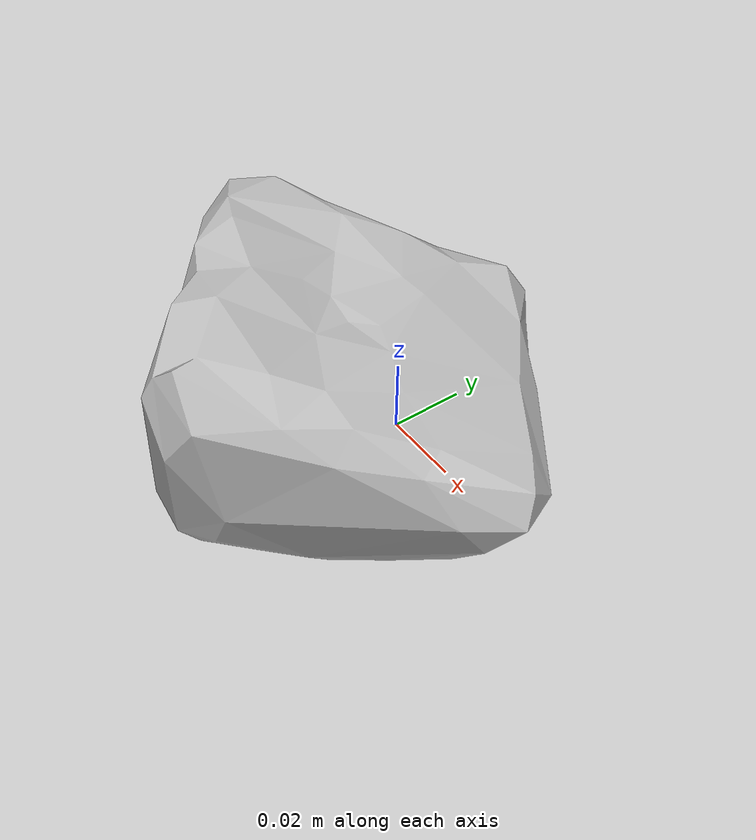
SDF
<?xml version='1.0'?>
<sdf version="1.4">
  <model name="076_timer">
    <static>false</static>
    <link name="link">
      <inertial>
        <pose>-0.009617803848578401 -0.01087246087547607 0.016057894872035083 1.6117468148813874 -1.3106354779819076 0.8565273561851304</pose>
        <mass>0.03293780458369037</mass>
        <inertia>
          <ixx>3.767921153933015e-05</ixx>
          <ixy>-8.341811178988029e-21</ixy>
          <ixz>-1.9207084034747944e-21</ixz>
          <iyy>2.5957874706961087e-05</iyy>
          <iyz>4.125934059582892e-22</iyz>
          <izz>2.3297596145458933e-05</izz>
        </inertia>
      </inertial>
      <collision name="collision">
        <geometry>
          <mesh>
            <!-- Use a downsampled mesh for collisions -->
            <uri>model:///076_timer/076_timer_250_collision.stl</uri>
	        </mesh>
        </geometry>
        <surface>
      </surface>
      </collision>
      <visual name="visual">
        <geometry>
          <mesh>
            <uri>model:///076_timer/textured.obj</uri>
	        </mesh>
        </geometry>
        <material>
          <script>
            <uri>model:///076_timer/076_timer.material</uri>
            <name>076_timer</name>
          </script>
        </material>
      </visual>
    </link>
  </model>
</sdf>
